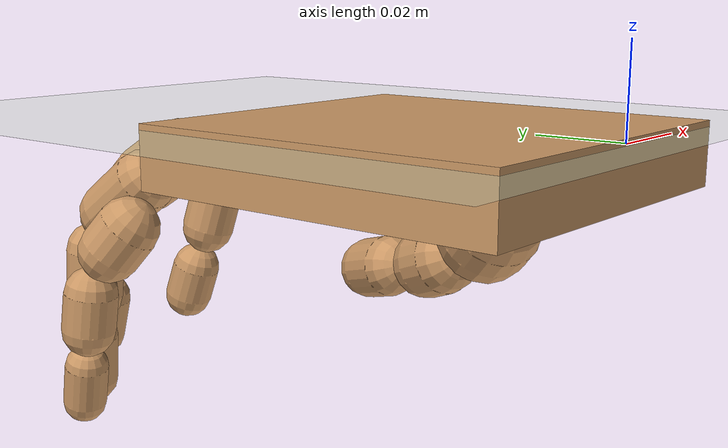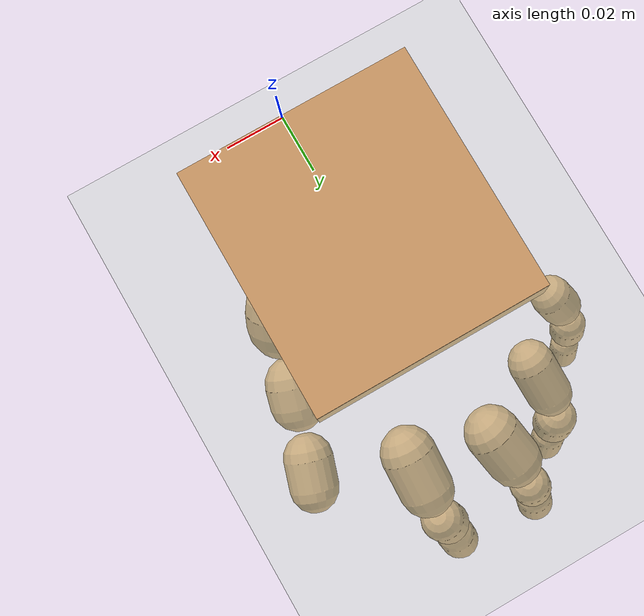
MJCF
<mujoco model="humanoid">
  <compiler coordinate="local" />
  <default>
    <joint damping="0.0" armature="0.01" stiffness="0.0" limited="true" />
    <geom conaffinity="1" condim="3" contype="7" margin="0.001" rgba="0.8 0.6 .4 1" />
  </default>
  <asset>
    <texture type="skybox" builtin="gradient" rgb1=".4 .5 .6" rgb2="0 0 0" width="100" height="100" />
    <texture builtin="flat" height="1278" mark="cross" markrgb="1 1 1" name="texgeom" random="0.01" rgb1="0.8 0.6 0.4" rgb2="0.8 0.6 0.4" type="cube" width="127" />
    <texture builtin="checker" height="100" name="texplane" rgb1="0 0 0" rgb2="0.8 0.8 0.8" type="2d" width="100" />
    <material name="MatPlane" reflectance="0.5" shininess="1" specular="1" texrepeat="60 60" texture="texplane" />
    <material name="geom" texture="texgeom" texuniform="true" />
  </asset>
  <worldbody>
    <light cutoff="100" diffuse="1 1 1" dir="-0 0 -1.3" directional="true" exponent="1" pos="0 0 1.3" specular=".1 .1 .1" />
    <geom conaffinity="1" condim="3" name="floor" pos="0 0 0" rgba="0.8 0.9 0.8 1" size="100 100 .2" type="plane" material="MatPlane" />
    <body name="Pelvis" pos="0 0 0">
      <body name="L_Wrist_s" pos="0 0 0">
        <joint name="L_Wrist_sx" type="slide" pos="0 0 0" axis="1 0 0" stiffness="10" damping="1" armature="0.02" range="-5.0000 5.0000" />
        <joint name="L_Wrist_sy" type="slide" pos="0 0 0" axis="0 1 0" stiffness="10" damping="1" armature="0.02" range="-5.0000 5.0000" />
        <joint name="L_Wrist_sz" type="slide" pos="0 0 0" axis="0 0 1" stiffness="10" damping="1" armature="0.02" range="-5.0000 5.0000" />
        <body name="L_Wrist" pos="0 0 0">
          <joint name="L_Wrist_x" type="hinge" pos="0 0 0" axis="1 0 0" stiffness="300" damping="30" armature="0.02" range="-180.0000 180.0000" />
          <joint name="L_Wrist_y" type="hinge" pos="0 0 0" axis="0 1 0" stiffness="300" damping="30" armature="0.02" range="-180.0000 180.0000" />
          <joint name="L_Wrist_z" type="hinge" pos="0 0 0" axis="0 0 1" stiffness="300" damping="30" armature="0.02" range="-180.0000 180.0000" />
          <geom type="box" contype="1" conaffinity="1" density="1000" pos="-0.0038 0.0443 -0.0061" size="0.0417 0.0449 0.0073" quat="1.0000 0.0000 0.0000 0.0000" />
          <body name="L_Index1" pos="0.0182 0.1034 -0.009">
            <joint name="L_Index1_x" type="hinge" pos="0 0 0" axis="1 0 0" stiffness="100" damping="10" armature="0.02" range="-180.0000 180.0000" />
            <joint name="L_Index1_y" type="hinge" pos="0 0 0" axis="0 1 0" stiffness="100" damping="10" armature="0.02" range="-180.0000 180.0000" />
            <joint name="L_Index1_z" type="hinge" pos="0 0 0" axis="0 0 1" stiffness="100" damping="10" armature="0.02" range="-180.0000 180.0000" />
            <geom type="capsule" contype="1" conaffinity="1" density="1000" fromto="0.0003 0.0081 -0.0039 0.0008 0.0212 -0.0102" size="0.009" />
            <body name="L_Index2" pos="0.0021 0.0303 -0.0131">
              <joint name="L_Index2_x" type="hinge" pos="0 0 0" axis="1 0 0" stiffness="100" damping="10" armature="0.02" range="-180.0000 180.0000" />
              <joint name="L_Index2_y" type="hinge" pos="0 0 0" axis="0 1 0" stiffness="100" damping="10" armature="0.02" range="-180.0000 180.0000" />
              <joint name="L_Index2_z" type="hinge" pos="0 0 0" axis="0 0 1" stiffness="100" damping="10" armature="0.02" range="-180.0000 180.0000" />
              <geom type="capsule" contype="1" conaffinity="1" density="1000" fromto="-0.0011 0.0016 -0.0069 -0.0025 0.0039 -0.0164" size="0.0072" />
              <body name="L_Index3" pos="-0.0026 0.0065 -0.0223">
                <joint name="L_Index3_x" type="hinge" pos="0 0 0" axis="1 0 0" stiffness="100" damping="10" armature="0.02" range="-180.0000 180.0000" />
                <joint name="L_Index3_y" type="hinge" pos="0 0 0" axis="0 1 0" stiffness="100" damping="10" armature="0.02" range="-180.0000 180.0000" />
                <joint name="L_Index3_z" type="hinge" pos="0 0 0" axis="0 0 1" stiffness="100" damping="10" armature="0.02" range="-180.0000 180.0000" />
                <geom type="capsule" contype="1" conaffinity="1" density="1000" fromto="-0.0005 0.0022 -0.0062 -0.0011 0.0053 -0.0151" size="0.0066" />
              </body>
            </body>
          </body>
          <body name="L_Middle1" pos="-0.0061 0.112 -0.0074">
            <joint name="L_Middle1_x" type="hinge" pos="0 0 0" axis="1 0 0" stiffness="100" damping="10" armature="0.02" range="-180.0000 180.0000" />
            <joint name="L_Middle1_y" type="hinge" pos="0 0 0" axis="0 1 0" stiffness="100" damping="10" armature="0.02" range="-180.0000 180.0000" />
            <joint name="L_Middle1_z" type="hinge" pos="0 0 0" axis="0 0 1" stiffness="100" damping="10" armature="0.02" range="-180.0000 180.0000" />
            <geom type="capsule" contype="1" conaffinity="1" density="1000" fromto="-0.0016 0.0073 -0.0050 -0.0041 0.0185 -0.0126" size="0.009" />
            <body name="L_Middle2" pos="-0.0047 0.0268 -0.0165">
              <joint name="L_Middle2_x" type="hinge" pos="0 0 0" axis="1 0 0" stiffness="100" damping="10" armature="0.02" range="-180.0000 180.0000" />
              <joint name="L_Middle2_y" type="hinge" pos="0 0 0" axis="0 1 0" stiffness="100" damping="10" armature="0.02" range="-180.0000 180.0000" />
              <joint name="L_Middle2_z" type="hinge" pos="0 0 0" axis="0 0 1" stiffness="100" damping="10" armature="0.02" range="-180.0000 180.0000" />
              <geom type="capsule" contype="1" conaffinity="1" density="1000" fromto="-0.0008 0.0010 -0.0066 -0.0022 0.0029 -0.0184" size="0.0067" />
              <body name="L_Middle3" pos="-0.002 0.0049 -0.0239">
                <joint name="L_Middle3_x" type="hinge" pos="0 0 0" axis="1 0 0" stiffness="100" damping="10" armature="0.02" range="-180.0000 180.0000" />
                <joint name="L_Middle3_y" type="hinge" pos="0 0 0" axis="0 1 0" stiffness="100" damping="10" armature="0.02" range="-180.0000 180.0000" />
                <joint name="L_Middle3_z" type="hinge" pos="0 0 0" axis="0 0 1" stiffness="100" damping="10" armature="0.02" range="-180.0000 180.0000" />
                <geom type="capsule" contype="1" conaffinity="1" density="1000" fromto="-0.0003 0.0015 -0.0060 -0.0007 0.0044 -0.0170" size="0.0062" />
              </body>
            </body>
          </body>
          <body name="L_Pinky1" pos="-0.0465 0.0866 -0.0157">
            <joint name="L_Pinky1_x" type="hinge" pos="0 0 0" axis="1 0 0" stiffness="100" damping="10" armature="0.02" range="-180.0000 180.0000" />
            <joint name="L_Pinky1_y" type="hinge" pos="0 0 0" axis="0 1 0" stiffness="100" damping="10" armature="0.02" range="-180.0000 180.0000" />
            <joint name="L_Pinky1_z" type="hinge" pos="0 0 0" axis="0 0 1" stiffness="100" damping="10" armature="0.02" range="-180.0000 180.0000" />
            <geom type="capsule" contype="1" conaffinity="1" density="1000" fromto="-0.0020 0.0038 -0.0053 -0.0041 0.0078 -0.0107" size="0.0069" />
            <body name="L_Pinky2" pos="-0.0052 0.0127 -0.015">
              <joint name="L_Pinky2_x" type="hinge" pos="0 0 0" axis="1 0 0" stiffness="100" damping="10" armature="0.02" range="-180.0000 180.0000" />
              <joint name="L_Pinky2_y" type="hinge" pos="0 0 0" axis="0 1 0" stiffness="100" damping="10" armature="0.02" range="-180.0000 180.0000" />
              <joint name="L_Pinky2_z" type="hinge" pos="0 0 0" axis="0 0 1" stiffness="100" damping="10" armature="0.02" range="-180.0000 180.0000" />
              <geom type="capsule" contype="1" conaffinity="1" density="1000" fromto="-0.0001 0.0009 -0.0059 -0.0003 0.0022 -0.0145" size="0.006" />
              <body name="L_Pinky3" pos="0.0006 0.0041 -0.0194">
                <joint name="L_Pinky3_x" type="hinge" pos="0 0 0" axis="1 0 0" stiffness="100" damping="10" armature="0.02" range="-180.0000 180.0000" />
                <joint name="L_Pinky3_y" type="hinge" pos="0 0 0" axis="0 1 0" stiffness="100" damping="10" armature="0.02" range="-180.0000 180.0000" />
                <joint name="L_Pinky3_z" type="hinge" pos="0 0 0" axis="0 0 1" stiffness="100" damping="10" armature="0.02" range="-180.0000 180.0000" />
                <geom type="capsule" contype="1" conaffinity="1" density="1000" fromto="0.0004 0.0013 -0.0046 0.0012 0.0038 -0.0138" size="0.0049" />
              </body>
            </body>
          </body>
          <body name="L_Ring1" pos="-0.0297 0.1004 -0.0105">
            <joint name="L_Ring1_x" type="hinge" pos="0 0 0" axis="1 0 0" stiffness="100" damping="10" armature="0.02" range="-180.0000 180.0000" />
            <joint name="L_Ring1_y" type="hinge" pos="0 0 0" axis="0 1 0" stiffness="100" damping="10" armature="0.02" range="-180.0000 180.0000" />
            <joint name="L_Ring1_z" type="hinge" pos="0 0 0" axis="0 0 1" stiffness="100" damping="10" armature="0.02" range="-180.0000 180.0000" />
            <geom type="capsule" contype="1" conaffinity="1" density="1000" fromto="-0.0007 0.0059 -0.0045 -0.0020 0.0174 -0.0133" size="0.0075" />
            <body name="L_Ring2" pos="-0.0016 0.0243 -0.0168">
              <joint name="L_Ring2_x" type="hinge" pos="0 0 0" axis="1 0 0" stiffness="100" damping="10" armature="0.02" range="-180.0000 180.0000" />
              <joint name="L_Ring2_y" type="hinge" pos="0 0 0" axis="0 1 0" stiffness="100" damping="10" armature="0.02" range="-180.0000 180.0000" />
              <joint name="L_Ring2_z" type="hinge" pos="0 0 0" axis="0 0 1" stiffness="100" damping="10" armature="0.02" range="-180.0000 180.0000" />
              <geom type="capsule" contype="1" conaffinity="1" density="1000" fromto="0.0001 0.0007 -0.0070 0.0002 0.0020 -0.0188" size="0.007" />
              <body name="L_Ring3" pos="0.0012 0.0037 -0.0247">
                <joint name="L_Ring3_x" type="hinge" pos="0 0 0" axis="1 0 0" stiffness="100" damping="10" armature="0.02" range="-180.0000 180.0000" />
                <joint name="L_Ring3_y" type="hinge" pos="0 0 0" axis="0 1 0" stiffness="100" damping="10" armature="0.02" range="-180.0000 180.0000" />
                <joint name="L_Ring3_z" type="hinge" pos="0 0 0" axis="0 0 1" stiffness="100" damping="10" armature="0.02" range="-180.0000 180.0000" />
                <geom type="capsule" contype="1" conaffinity="1" density="1000" fromto="0.0005 0.0011 -0.0056 0.0017 0.0036 -0.0181" size="0.0058" />
              </body>
            </body>
          </body>
          <body name="L_Thumb1" pos="0.0259 0.0401 -0.0186">
            <joint name="L_Thumb1_x" type="hinge" pos="0 0 0" axis="1 0 0" stiffness="100" damping="10" armature="0.02" range="-180.0000 180.0000" />
            <joint name="L_Thumb1_y" type="hinge" pos="0 0 0" axis="0 1 0" stiffness="100" damping="10" armature="0.02" range="-180.0000 180.0000" />
            <joint name="L_Thumb1_z" type="hinge" pos="0 0 0" axis="0 0 1" stiffness="100" damping="10" armature="0.02" range="-180.0000 180.0000" />
            <geom type="capsule" contype="1" conaffinity="1" density="1000" fromto="0.0043 0.0083 -0.0082 0.0064 0.0123 -0.0122" size="0.0124" />
            <body name="L_Thumb2" pos="0.0117 0.0216 -0.0194">
              <joint name="L_Thumb2_x" type="hinge" pos="0 0 0" axis="1 0 0" stiffness="100" damping="10" armature="0.02" range="-180.0000 180.0000" />
              <joint name="L_Thumb2_y" type="hinge" pos="0 0 0" axis="0 1 0" stiffness="100" damping="10" armature="0.02" range="-180.0000 180.0000" />
              <joint name="L_Thumb2_z" type="hinge" pos="0 0 0" axis="0 0 1" stiffness="100" damping="10" armature="0.02" range="-180.0000 180.0000" />
              <geom type="capsule" contype="1" conaffinity="1" density="1000" fromto="0.0024 0.0085 -0.0034 0.0044 0.0154 -0.0061" size="0.0095" />
              <body name="L_Thumb3" pos="0.0078 0.0249 -0.0085">
                <joint name="L_Thumb3_x" type="hinge" pos="0 0 0" axis="1 0 0" stiffness="100" damping="10" armature="0.02" range="-180.0000 180.0000" />
                <joint name="L_Thumb3_y" type="hinge" pos="0 0 0" axis="0 1 0" stiffness="100" damping="10" armature="0.02" range="-180.0000 180.0000" />
                <joint name="L_Thumb3_z" type="hinge" pos="0 0 0" axis="0 0 1" stiffness="100" damping="10" armature="0.02" range="-180.0000 180.0000" />
                <geom type="capsule" contype="1" conaffinity="1" density="1000" fromto="0.0027 0.0079 -0.0023 0.0061 0.0180 -0.0052" size="0.0087" />
              </body>
            </body>
          </body>
        </body>
      </body>
    </body>
  </worldbody>
  <actuator>
    <motor name="L_Wrist_sx" joint="L_Wrist_sx" gear="1" />
    <motor name="L_Wrist_sy" joint="L_Wrist_sy" gear="1" />
    <motor name="L_Wrist_sz" joint="L_Wrist_sz" gear="1" />
    <motor name="L_Wrist_x" joint="L_Wrist_x" gear="1" />
    <motor name="L_Wrist_y" joint="L_Wrist_y" gear="1" />
    <motor name="L_Wrist_z" joint="L_Wrist_z" gear="1" />
    <motor name="L_Index1_x" joint="L_Index1_x" gear="1" />
    <motor name="L_Index1_y" joint="L_Index1_y" gear="1" />
    <motor name="L_Index1_z" joint="L_Index1_z" gear="1" />
    <motor name="L_Index2_x" joint="L_Index2_x" gear="1" />
    <motor name="L_Index2_y" joint="L_Index2_y" gear="1" />
    <motor name="L_Index2_z" joint="L_Index2_z" gear="1" />
    <motor name="L_Index3_x" joint="L_Index3_x" gear="1" />
    <motor name="L_Index3_y" joint="L_Index3_y" gear="1" />
    <motor name="L_Index3_z" joint="L_Index3_z" gear="1" />
    <motor name="L_Middle1_x" joint="L_Middle1_x" gear="1" />
    <motor name="L_Middle1_y" joint="L_Middle1_y" gear="1" />
    <motor name="L_Middle1_z" joint="L_Middle1_z" gear="1" />
    <motor name="L_Middle2_x" joint="L_Middle2_x" gear="1" />
    <motor name="L_Middle2_y" joint="L_Middle2_y" gear="1" />
    <motor name="L_Middle2_z" joint="L_Middle2_z" gear="1" />
    <motor name="L_Middle3_x" joint="L_Middle3_x" gear="1" />
    <motor name="L_Middle3_y" joint="L_Middle3_y" gear="1" />
    <motor name="L_Middle3_z" joint="L_Middle3_z" gear="1" />
    <motor name="L_Pinky1_x" joint="L_Pinky1_x" gear="1" />
    <motor name="L_Pinky1_y" joint="L_Pinky1_y" gear="1" />
    <motor name="L_Pinky1_z" joint="L_Pinky1_z" gear="1" />
    <motor name="L_Pinky2_x" joint="L_Pinky2_x" gear="1" />
    <motor name="L_Pinky2_y" joint="L_Pinky2_y" gear="1" />
    <motor name="L_Pinky2_z" joint="L_Pinky2_z" gear="1" />
    <motor name="L_Pinky3_x" joint="L_Pinky3_x" gear="1" />
    <motor name="L_Pinky3_y" joint="L_Pinky3_y" gear="1" />
    <motor name="L_Pinky3_z" joint="L_Pinky3_z" gear="1" />
    <motor name="L_Ring1_x" joint="L_Ring1_x" gear="1" />
    <motor name="L_Ring1_y" joint="L_Ring1_y" gear="1" />
    <motor name="L_Ring1_z" joint="L_Ring1_z" gear="1" />
    <motor name="L_Ring2_x" joint="L_Ring2_x" gear="1" />
    <motor name="L_Ring2_y" joint="L_Ring2_y" gear="1" />
    <motor name="L_Ring2_z" joint="L_Ring2_z" gear="1" />
    <motor name="L_Ring3_x" joint="L_Ring3_x" gear="1" />
    <motor name="L_Ring3_y" joint="L_Ring3_y" gear="1" />
    <motor name="L_Ring3_z" joint="L_Ring3_z" gear="1" />
    <motor name="L_Thumb1_x" joint="L_Thumb1_x" gear="1" />
    <motor name="L_Thumb1_y" joint="L_Thumb1_y" gear="1" />
    <motor name="L_Thumb1_z" joint="L_Thumb1_z" gear="1" />
    <motor name="L_Thumb2_x" joint="L_Thumb2_x" gear="1" />
    <motor name="L_Thumb2_y" joint="L_Thumb2_y" gear="1" />
    <motor name="L_Thumb2_z" joint="L_Thumb2_z" gear="1" />
    <motor name="L_Thumb3_x" joint="L_Thumb3_x" gear="1" />
    <motor name="L_Thumb3_y" joint="L_Thumb3_y" gear="1" />
    <motor name="L_Thumb3_z" joint="L_Thumb3_z" gear="1" />
  </actuator>
  <contact />
  <sensor />
  <size njmax="700" nconmax="700" />
</mujoco>
